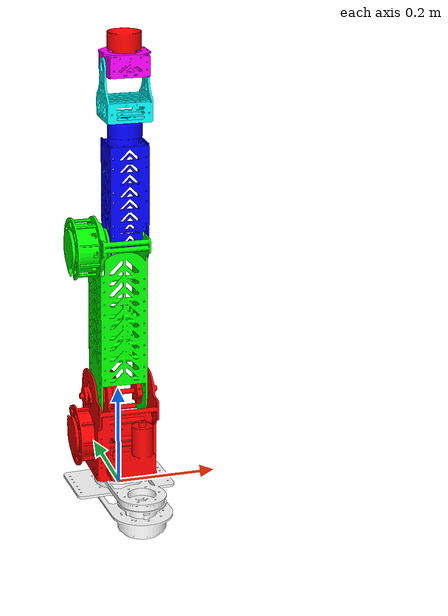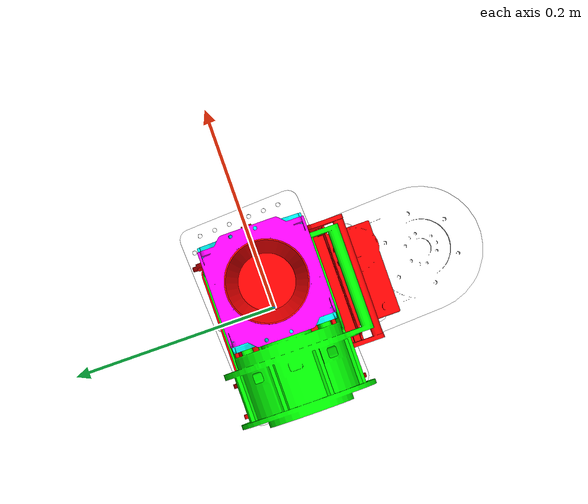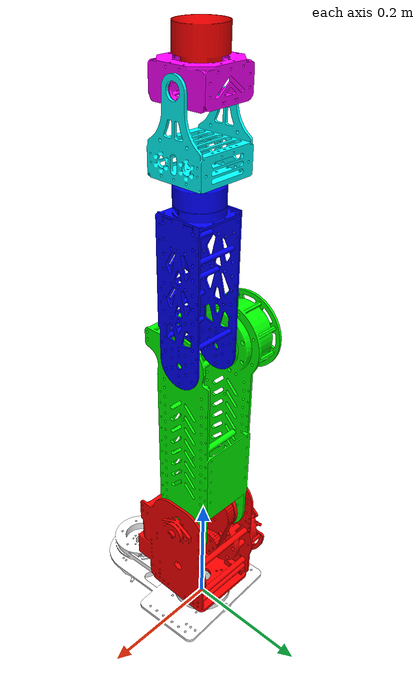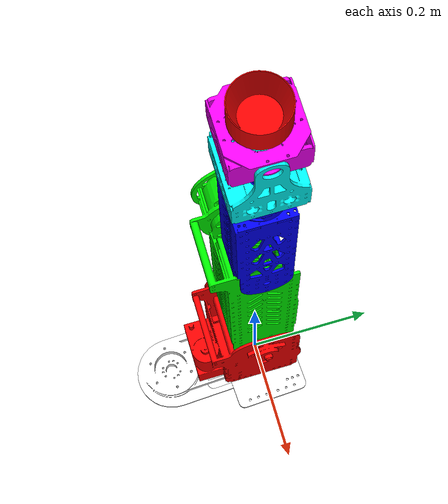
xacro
<?xml version="1.0"?>
<robot xmlns:xacro="http://www.ros.org/wiki/xacro" name="rm_arm_2025_last">
    <xacro:arg name="initial_positions_file" default="initial_positions.yaml" />

    <!-- Import rm_arm_2025_last urdf file -->
    <xacro:include filename="$(find rm_arm_2025_last)/urdf/rm_arm_2025_last.urdf" />

    <!-- Import control_xacro -->
    <xacro:include filename="arm_real.ros2_control.xacro" />

    <xacro:rm_arm_2025_last_ros2_control name="RMArmSystem" initial_positions_file="$(arg initial_positions_file)"/>

</robot>

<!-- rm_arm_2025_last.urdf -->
<robot
  name="rm_arm_2025_last">
  <link
    name="base_link">
    <inertial>
      <origin
        xyz="0.0035834 -0.072814 0.0041856"
        rpy="0 0 0" />
      <mass
        value="0.99761" />
      <inertia
        ixx="0.0013793"
        ixy="8.959E-07"
        ixz="5.9742E-07"
        iyy="0.0013796"
        iyz="2.8092E-07"
        izz="0.0026738" />
    </inertial>
    <visual>
      <origin
        xyz="0 0 0"
        rpy="0 0 0" />
      <geometry>
        <mesh
          filename="package://rm_arm_2025_last/meshes/base_link.STL" />
      </geometry>
      <material
        name="">
        <color
          rgba="1 1 1 1" />
      </material>
    </visual>
    <collision>
      <origin
        xyz="0 0 0"
        rpy="0 0 0" />
      <geometry>
        <mesh
          filename="package://rm_arm_2025_last/meshes/base_link.STL" />
      </geometry>
    </collision>
  </link>
  <link
    name="link1">
    <inertial>
      <origin
        xyz="-0.015208 -0.015295 0.12731"
        rpy="0 0 0" />
      <mass
        value="2.0007" />
      <inertia
        ixx="0.0029003"
        ixy="5.5292E-07"
        ixz="-6.1317E-05"
        iyy="0.0024578"
        iyz="1.8535E-05"
        izz="0.0018243" />
    </inertial>
    <visual>
      <origin
        xyz="0 0 0"
        rpy="0 0 0" />
      <geometry>
        <mesh
          filename="package://rm_arm_2025_last/meshes/link1.STL" />
      </geometry>
      <material
        name="">
        <color
          rgba="1 0 0 1" />
      </material>
    </visual>
    <collision>
      <origin
        xyz="0 0 0"
        rpy="0 0 0" />
      <geometry>
        <mesh
          filename="package://rm_arm_2025_last/meshes/link1.STL" />
      </geometry>
    </collision>
  </link>
  <joint
    name="joint1"
    type="continuous">
    <origin
      xyz="0 0 0"
      rpy="0 0 0" />
    <parent
      link="base_link" />
    <child
      link="link1" />
    <axis
      xyz="0 0 1" />
    <limit
      effort="1000"
      velocity="3.14" />
  </joint>
  <link
    name="link2">
    <inertial>
      <origin
        xyz="-0.21501 -0.0038131 -0.014428"
        rpy="0 0 0" />
      <mass
        value="1.4127" />
      <inertia
        ixx="0.0010529"
        ixy="-0.00013101"
        ixz="3.6543E-06"
        iyy="0.0077031"
        iyz="4.2777E-12"
        izz="0.0082636" />
    </inertial>
    <visual>
      <origin
        xyz="0 0 0"
        rpy="0 0 0" />
      <geometry>
        <mesh
          filename="package://rm_arm_2025_last/meshes/link2.STL" />
      </geometry>
      <material
        name="">
        <color
          rgba="0 1 0 1" />
      </material>
    </visual>
    <collision>
      <origin
        xyz="0 0 0"
        rpy="0 0 0" />
      <geometry>
        <mesh
          filename="package://rm_arm_2025_last/meshes/link2.STL" />
      </geometry>
    </collision>
  </link>
  <joint
    name="joint2"
    type="revolute">
    <origin
      xyz="-0.0093356 9.7829E-05 0.192"
      rpy="0 1.5708 0" />
    <parent
      link="link1" />
    <child
      link="link2" />
    <axis
      xyz="0 0 1" />
    <limit
      lower="-2.4"
      upper="2.4"
      effort="1000"
      velocity="3.14" />
  </joint>
  <link
    name="link3">
    <inertial>
      <origin
        xyz="-0.16282 -0.0049088 0.037734"
        rpy="0 0 0" />
      <mass
        value="0.55906" />
      <inertia
        ixx="0.00029574"
        ixy="-2.5319E-07"
        ixz="1.0267E-05"
        iyy="0.0011986"
        iyz="-4.4885E-07"
        izz="0.001216" />
    </inertial>
    <visual>
      <origin
        xyz="0 0 0"
        rpy="0 0 0" />
      <geometry>
        <mesh
          filename="package://rm_arm_2025_last/meshes/link3.STL" />
      </geometry>
      <material
        name="">
        <color
          rgba="0 0 1 1" />
      </material>
    </visual>
    <collision>
      <origin
        xyz="0 0 0"
        rpy="0 0 0" />
      <geometry>
        <mesh
          filename="package://rm_arm_2025_last/meshes/link3.STL" />
      </geometry>
    </collision>
  </link>
  <joint
    name="joint3"
    type="revolute">
    <origin
      xyz="-0.304 0 -0.013"
      rpy="0 0 0" />
    <parent
      link="link2" />
    <child
      link="link3" />
    <axis
      xyz="0 0 1" />
    <limit
      lower="-2.4"
      upper="2.4"
      effort="1000"
      velocity="3.14" />
  </joint>
  <link
    name="link4">
    <inertial>
      <origin
        xyz="3.5192E-06 -0.00025709 -0.034104"
        rpy="0 0 0" />
      <mass
        value="0.14073" />
      <inertia
        ixx="0.00013606"
        ixy="1.0963E-08"
        ixz="1.4549E-09"
        iyy="0.00011896"
        iyz="1.0335E-20"
        izz="0.00010824" />
    </inertial>
    <visual>
      <origin
        xyz="0 0 0"
        rpy="0 0 0" />
      <geometry>
        <mesh
          filename="package://rm_arm_2025_last/meshes/link4.STL" />
      </geometry>
      <material
        name="">
        <color
          rgba="0 1 1 1" />
      </material>
    </visual>
    <collision>
      <origin
        xyz="0 0 0"
        rpy="0 0 0" />
      <geometry>
        <mesh
          filename="package://rm_arm_2025_last/meshes/link4.STL" />
      </geometry>
    </collision>
  </link>
  <joint
    name="joint4"
    type="continuous">
    <origin
      xyz="-0.245 0.00025301 0.038"
      rpy="0 1.5708 0" />
    <parent
      link="link3" />
    <child
      link="link4" />
    <axis
      xyz="0 0 1" />
    <limit
      effort="1000"
      velocity="3.14" />
  </joint>
  <link
    name="link5">
    <inertial>
      <origin
        xyz="0.0081122 9.9482E-06 -0.044819"
        rpy="0 0 0" />
      <mass
        value="0.08962" />
      <inertia
        ixx="8.2364E-05"
        ixy="-3.0394E-08"
        ixz="-4.11E-13"
        iyy="3.7485E-05"
        iyz="-3.9227E-09"
        izz="6.2222E-05" />
    </inertial>
    <visual>
      <origin
        xyz="0 0 0"
        rpy="0 0 0" />
      <geometry>
        <mesh
          filename="package://rm_arm_2025_last/meshes/link5.STL" />
      </geometry>
      <material
        name="">
        <color
          rgba="1 0 1 1" />
      </material>
    </visual>
    <collision>
      <origin
        xyz="0 0 0"
        rpy="0 0 0" />
      <geometry>
        <mesh
          filename="package://rm_arm_2025_last/meshes/link5.STL" />
      </geometry>
    </collision>
  </link>
  <joint
    name="joint5"
    type="revolute">
    <origin
      xyz="0.044825 -0.00025301 -0.105"
      rpy="0 1.5708 0" />
    <parent
      link="link4" />
    <child
      link="link5" />
    <axis
      xyz="0 0 1" />
    <limit
      lower="-1.74"
      upper="1.74"
      effort="1000"
      velocity="3.14" />
  </joint>
  <link
    name="EE_link">
    <inertial>
      <origin
        xyz="6.9389E-17 -9.601E-17 0.0080547"
        rpy="0 0 0" />
      <mass
        value="0.061383" />
      <inertia
        ixx="2.4308E-05"
        ixy="-3.7153E-08"
        ixz="-2.6572E-22"
        iyy="2.4821E-05"
        iyz="-3.4048E-21"
        izz="3.6926E-05" />
    </inertial>
    <visual>
      <origin
        xyz="0 0 0"
        rpy="0 0 0" />
      <geometry>
        <mesh
          filename="package://rm_arm_2025_last/meshes/EE_link.STL" />
      </geometry>
      <material
        name="">
        <color
          rgba="1 0 0 1" />
      </material>
    </visual>
    <collision>
      <origin
        xyz="0 0 0"
        rpy="0 0 0" />
      <geometry>
        <mesh
          filename="package://rm_arm_2025_last/meshes/EE_link.STL" />
      </geometry>
    </collision>
  </link>
  <joint
    name="joint6"
    type="continuous">
    <origin
      xyz="0.03055 0 -0.044825"
      rpy="0 1.5708 0" />
    <parent
      link="link5" />
    <child
      link="EE_link" />
    <axis
      xyz="0 0 1" />
    <limit
      effort="1000"
      velocity="3.14" />
  </joint>
</robot>
